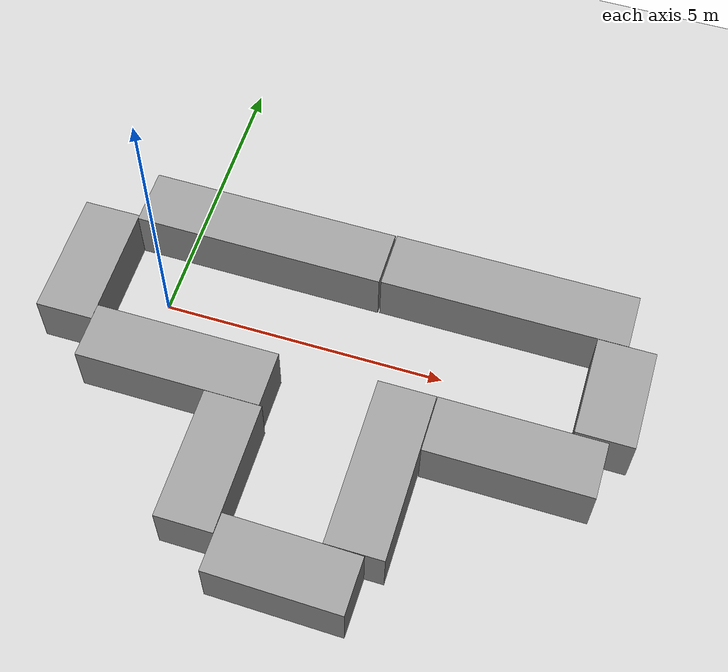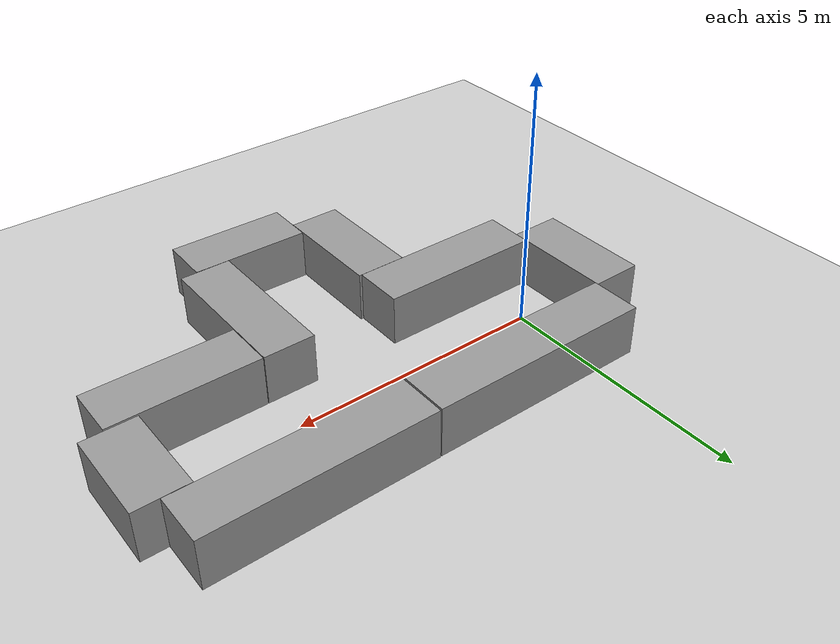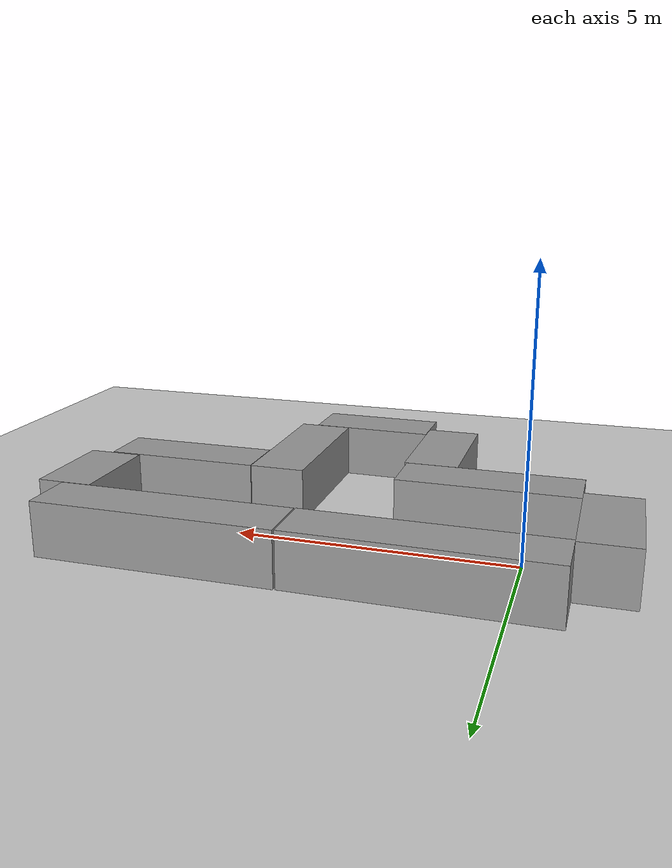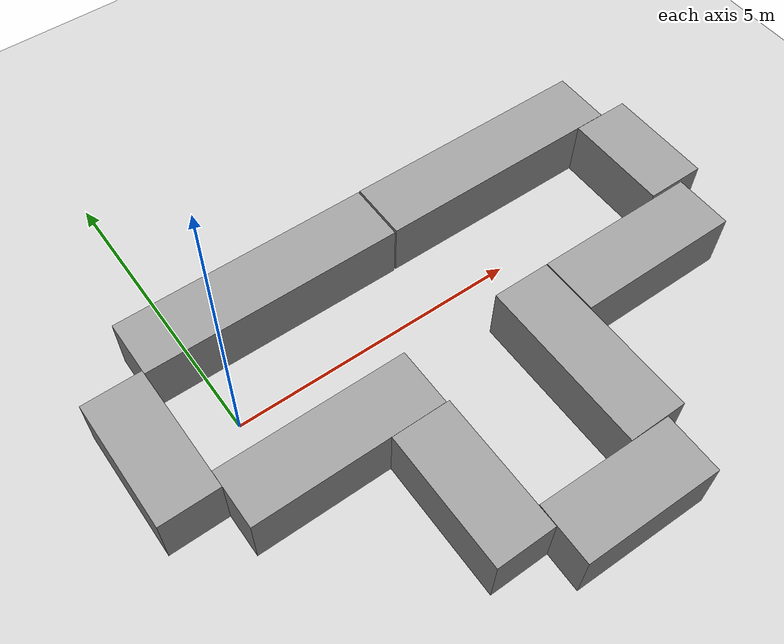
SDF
<sdf version="1.6">
 <world name="default">
  <light name="sun" type="directional">
   <pose>0 0 10 0 -0 0</pose>
   <diffuse>0.8 0.8 0.8 1</diffuse>
   <specular>0.2 0.2 0.2 1</specular>
   <attenuation>
    <range>1000</range>
    <constant>0.9</constant>
    <linear>0.01</linear>
    <quadratic>0.001</quadratic>
   </attenuation>
   <direction>-0.5 0.1 -0.9</direction>
  </light>
  <model name="ground_plane">
   <static>1</static>
   <link name="link">
    <collision name="collision">
     <geometry><plane><normal>0 0 1</normal><size>100 100</size></plane></geometry>
     <surface>
      <contact><collide_bitmask>65535</collide_bitmask></contact>
      <friction><ode><mu>100</mu><mu2>50</mu2></ode></friction>
     </surface>
    </collision>
    <visual name="visual">
     <cast_shadows>0</cast_shadows>
     <geometry><plane><normal>0 0 1</normal><size>100 100</size></plane></geometry>
     <material>
      <script><uri>file://media/materials/scripts/gazebo.material</uri><name>Gazebo/Grey</name></script>
     </material>
    </visual>
   </link>
  </model>
  <gravity>0 0 -9.8</gravity>
  <magnetic_field>6e-06 2.3e-05 -4.2e-05</magnetic_field>
  <atmosphere type="adiabatic"/>
  <physics name="default_physics" default="0" type="ode">
   <max_step_size>0.001</max_step_size>
   <real_time_factor>1</real_time_factor>
   <real_time_update_rate>1000</real_time_update_rate>
  </physics>
  <scene><ambient>0.4 0.4 0.4 1</ambient><background>0.7 0.7 0.7 1</background><shadows>1</shadows></scene>
  <audio><device>default</device></audio>
  <spherical_coordinates>
   <surface_model>EARTH_WGS84</surface_model>
   <latitude_deg>0</latitude_deg>
   <longitude_deg>0</longitude_deg>
   <elevation>0</elevation>
   <heading_deg>0</heading_deg>
  </spherical_coordinates>
  <model name="unit_box">
   <pose>-1.3512 -0.038994 0.499995 0 -9e-06 0.00475</pose>
   <link name="link">
    <inertial>
     <mass>1</mass>
     <inertia>
      <ixx>0.166667</ixx>
      <ixy>0</ixy>
      <ixz>0</ixz>
      <iyy>0.166667</iyy>
      <iyz>0</iyz>
      <izz>0.166667</izz>
     </inertia>
    </inertial>
    <collision name="collision"><geometry><box><size>1 2.21262 1</size></box></geometry></collision>
    <visual name="visual">
     <geometry><box><size>1 2.21262 1</size></box></geometry>
     <material>
      <script><name>Gazebo/Grey</name><uri>file://media/materials/scripts/gazebo.material</uri></script>
     </material>
    </visual>
   </link>
  </model>
  <model name="unit_box_0">
   <pose>0.769084 -1.36086 0.499742 -0 -0.00016 0.000553</pose>
   <link name="link">
    <inertial>
     <mass>1</mass>
     <inertia>
      <ixx>0.166667</ixx>
      <ixy>0</ixy>
      <ixz>0</ixz>
      <iyy>0.166667</iyy>
      <iyz>0</iyz>
      <izz>0.166667</izz>
     </inertia>
    </inertial>
    <collision name="collision"><geometry><box><size>3.22897 1 1</size></box></geometry></collision>
    <visual name="visual">
     <geometry><box><size>3.22897 1 1</size></box></geometry>
     <material>
      <script><name>Gazebo/Grey</name><uri>file://media/materials/scripts/gazebo.material</uri></script>
     </material>
    </visual>
   </link>
  </model>
  <model name="unit_box_1">
   <pose>1.35481 1.49686 0.5 0 -0 -0.003119</pose>
   <link name="link">
    <inertial>
     <mass>1</mass>
     <inertia>
      <ixx>0.166667</ixx>
      <ixy>0</ixy>
      <ixz>0</ixz>
      <iyy>0.166667</iyy>
      <iyz>0</iyz>
      <izz>0.166667</izz>
     </inertia>
    </inertial>
    <collision name="collision"><geometry><box><size>4.41873 1 1</size></box></geometry></collision>
    <visual name="visual">
     <geometry><box><size>4.41873 1 1</size></box></geometry>
     <material>
      <script><name>Gazebo/Grey</name><uri>file://media/materials/scripts/gazebo.material</uri></script>
     </material>
    </visual>
   </link>
  </model>
  <model name="unit_box_2">
   <pose>1.93326 -3.01382 0.499962 -3.3e-05 -0 -0</pose>
   <link name="link">
    <inertial>
     <mass>1</mass>
     <inertia>
      <ixx>0.166667</ixx>
      <ixy>0</ixy>
      <ixz>0</ixz>
      <iyy>0.166667</iyy>
      <iyz>0</iyz>
      <izz>0.166667</izz>
     </inertia>
    </inertial>
    <collision name="collision"><geometry><box><size>1 2.3028 1</size></box></geometry></collision>
    <visual name="visual">
     <geometry><box><size>1 2.3028 1</size></box></geometry>
     <material>
      <script><name>Gazebo/Grey</name><uri>file://media/materials/scripts/gazebo.material</uri></script>
     </material>
    </visual>
   </link>
  </model>
  <model name="unit_box_3">
   <pose>3.59793 -4.31585 0.499995 9e-06 -0 -0.013479</pose>
   <link name="link">
    <inertial>
     <mass>1</mass>
     <inertia>
      <ixx>0.166667</ixx>
      <ixy>0</ixy>
      <ixz>0</ixz>
      <iyy>0.166667</iyy>
      <iyz>0</iyz>
      <izz>0.166667</izz>
     </inertia>
    </inertial>
    <collision name="collision"><geometry><box><size>2.32208 1 1</size></box></geometry></collision>
    <visual name="visual">
     <geometry><box><size>2.32208 1 1</size></box></geometry>
     <material>
      <script><name>Gazebo/Grey</name><uri>file://media/materials/scripts/gazebo.material</uri></script>
     </material>
    </visual>
   </link>
  </model>
  <model name="unit_box_4">
   <pose>4.59175 -2.33395 0.499834 -0.000112 0 0.000721</pose>
   <link name="link">
    <inertial>
     <mass>1</mass>
     <inertia>
      <ixx>0.166667</ixx>
      <ixy>0</ixy>
      <ixz>0</ixz>
      <iyy>0.166667</iyy>
      <iyz>0</iyz>
      <izz>0.166667</izz>
     </inertia>
    </inertial>
    <collision name="collision"><geometry><box><size>1 2.96884 1</size></box></geometry></collision>
    <visual name="visual">
     <geometry><box><size>1 2.96884 1</size></box></geometry>
     <material>
      <script><name>Gazebo/Grey</name><uri>file://media/materials/scripts/gazebo.material</uri></script>
     </material>
    </visual>
   </link>
  </model>
  <model name="unit_box_5">
   <pose>5.74159 1.49929 0.498952 0 0.000488 -4.8e-05</pose>
   <link name="link">
    <inertial>
     <mass>1</mass>
     <inertia>
      <ixx>0.166667</ixx>
      <ixy>0</ixy>
      <ixz>0</ixz>
      <iyy>0.166667</iyy>
      <iyz>0</iyz>
      <izz>0.166667</izz>
     </inertia>
    </inertial>
    <collision name="collision"><geometry><box><size>4.29493 1 1</size></box></geometry></collision>
    <visual name="visual">
     <geometry><box><size>4.29493 1 1</size></box></geometry>
     <material>
      <script><name>Gazebo/Grey</name><uri>file://media/materials/scripts/gazebo.material</uri></script>
     </material>
    </visual>
   </link>
  </model>
  <model name="unit_box_6">
   <pose>6.52149 -1.3486 0.499871 0 -9.1e-05 0</pose>
   <link name="link">
    <inertial>
     <mass>1</mass>
     <inertia>
      <ixx>0.166667</ixx>
      <ixy>0</ixy>
      <ixz>0</ixz>
      <iyy>0.166667</iyy>
      <iyz>0</iyz>
      <izz>0.166667</izz>
     </inertia>
    </inertial>
    <collision name="collision"><geometry><box><size>2.83571 1 1</size></box></geometry></collision>
    <visual name="visual">
     <geometry><box><size>2.83571 1 1</size></box></geometry>
     <material>
      <script><name>Gazebo/Grey</name><uri>file://media/materials/scripts/gazebo.material</uri></script>
     </material>
    </visual>
   </link>
  </model>
  <model name="unit_box_7">
   <pose>7.8635 0.092032 0.499994 7e-06 -0 0</pose>
   <link name="link">
    <inertial>
     <mass>1</mass>
     <inertia>
      <ixx>0.166667</ixx>
      <ixy>0</ixy>
      <ixz>0</ixz>
      <iyy>0.166667</iyy>
      <iyz>0</iyz>
      <izz>0.166667</izz>
     </inertia>
    </inertial>
    <collision name="collision"><geometry><box><size>1 1.80534 1</size></box></geometry></collision>
    <visual name="visual">
     <geometry><box><size>1 1.80534 1</size></box></geometry>
     <material>
      <script><name>Gazebo/Grey</name><uri>file://media/materials/scripts/gazebo.material</uri></script>
     </material>
    </visual>
   </link>
  </model>
 </world>
</sdf>
